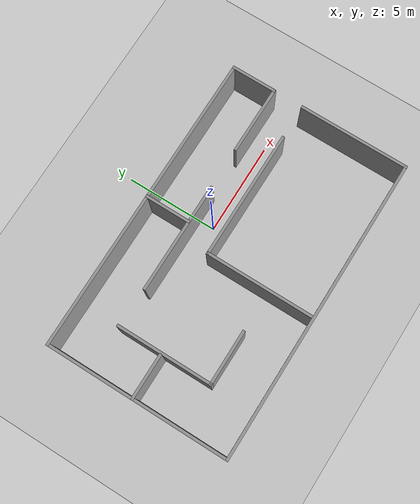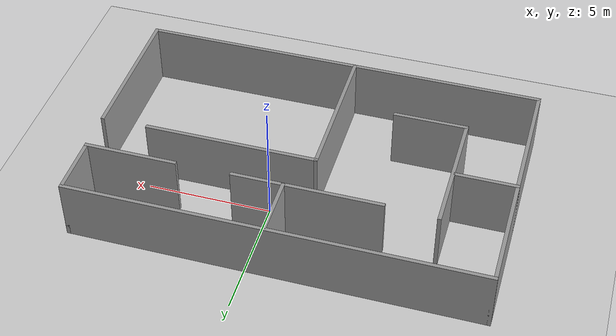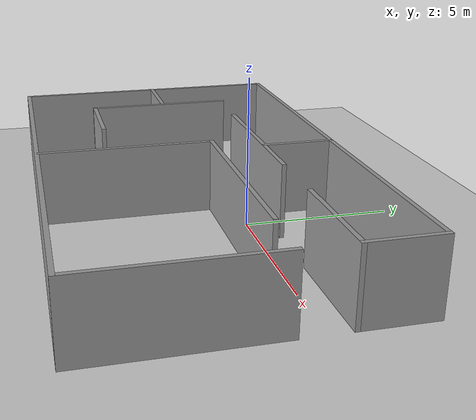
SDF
<sdf version="1.7">
 <world name="default">
  <light name="sun" type="directional">
   <pose>0 0 10 0 -0 0</pose>
   <diffuse>0.8 0.8 0.8 1</diffuse>
   <specular>0.2 0.2 0.2 1</specular>
   <attenuation>
    <range>1000</range>
    <constant>0.9</constant>
    <linear>0.01</linear>
    <quadratic>0.001</quadratic>
   </attenuation>
   <direction>-0.5 0.1 -0.9</direction>
   <spot><inner_angle>0</inner_angle><outer_angle>0</outer_angle><falloff>0</falloff></spot>
  </light>
  <model name="ground_plane">
   <static>1</static>
   <link name="link">
    <collision name="collision">
     <geometry><plane><normal>0 0 1</normal><size>100 100</size></plane></geometry>
     <surface>
      <contact><collide_bitmask>65535</collide_bitmask></contact>
      <friction><ode><mu>100</mu><mu2>50</mu2></ode></friction>
     </surface>
    </collision>
    <visual name="visual">
     <cast_shadows>0</cast_shadows>
     <geometry><plane><normal>0 0 1</normal><size>100 100</size></plane></geometry>
     <material>
      <script><uri>file://media/materials/scripts/gazebo.material</uri><name>Gazebo/Grey</name></script>
     </material>
    </visual>
   </link>
  </model>
  <gravity>0 0 -9.8</gravity>
  <magnetic_field>6e-06 2.3e-05 -4.2e-05</magnetic_field>
  <atmosphere type="adiabatic"/>
  <physics type="ode">
   <max_step_size>0.001</max_step_size>
   <real_time_factor>1</real_time_factor>
   <real_time_update_rate>1000</real_time_update_rate>
  </physics>
  <scene><ambient>0.4 0.4 0.4 1</ambient><background>0.7 0.7 0.7 1</background><shadows>1</shadows></scene>
  <spherical_coordinates>
   <surface_model>EARTH_WGS84</surface_model>
   <latitude_deg>0</latitude_deg>
   <longitude_deg>0</longitude_deg>
   <elevation>0</elevation>
   <heading_deg>0</heading_deg>
  </spherical_coordinates>
  <model name="simple_world">
   <pose>-1.07736 -1.73372 0 0 -0 0</pose>
   <link name="Wall_64">
    <collision name="Wall_64_Collision">
     <geometry><box><size>10 0.15 2.5</size></box></geometry>
     <pose>0 0 1.25 0 -0 0</pose>
    </collision>
    <visual name="Wall_64_Visual">
     <pose>0 0 1.25 0 -0 0</pose>
     <geometry><box><size>10 0.15 2.5</size></box></geometry>
     <material>
      <script><uri>file://media/materials/scripts/gazebo.material</uri><name>Gazebo/Grey</name></script>
      <ambient>1 1 1 1</ambient>
     </material>
     <meta><layer>0</layer></meta>
    </visual>
    <pose>-8.175 0 0 0 -0 -1.5708</pose>
   </link>
   <link name="Wall_65">
    <collision name="Wall_65_Collision">
     <geometry><box><size>16.5 0.15 2.5</size></box></geometry>
     <pose>0 0 1.25 0 -0 0</pose>
    </collision>
    <visual name="Wall_65_Visual">
     <pose>0 0 1.25 0 -0 0</pose>
     <geometry><box><size>16.5 0.15 2.5</size></box></geometry>
     <material>
      <script><uri>file://media/materials/scripts/gazebo.material</uri><name>Gazebo/Grey</name></script>
      <ambient>1 1 1 1</ambient>
     </material>
     <meta><layer>0</layer></meta>
    </visual>
    <pose>-0 -4.925 0 0 -0 0</pose>
   </link>
   <link name="Wall_66">
    <collision name="Wall_66_Collision">
     <geometry><box><size>6 0.15 2.5</size></box></geometry>
     <pose>0 0 1.25 0 -0 0</pose>
    </collision>
    <visual name="Wall_66_Visual">
     <pose>0 0 1.25 0 -0 0</pose>
     <geometry><box><size>6 0.15 2.5</size></box></geometry>
     <material>
      <script><uri>file://media/materials/scripts/gazebo.material</uri><name>Gazebo/Grey</name></script>
      <ambient>1 1 1 1</ambient>
     </material>
     <meta><layer>0</layer></meta>
    </visual>
    <pose>8.175 -2 0 0 -0 1.5708</pose>
   </link>
   <link name="Wall_68">
    <collision name="Wall_68_Collision">
     <geometry><box><size>16.5 0.15 2.5</size></box></geometry>
     <pose>0 0 1.25 0 -0 0</pose>
    </collision>
    <visual name="Wall_68_Visual">
     <pose>0 0 1.25 0 -0 0</pose>
     <geometry><box><size>16.5 0.15 2.5</size></box></geometry>
     <material>
      <script><uri>file://media/materials/scripts/gazebo.material</uri><name>Gazebo/Grey</name></script>
      <ambient>1 1 1 1</ambient>
     </material>
     <meta><layer>0</layer></meta>
    </visual>
    <pose>-0 4.925 0 0 -0 0</pose>
   </link>
   <link name="Wall_69">
    <collision name="Wall_69_Collision">
     <geometry><box><size>2.5 0.15 2.5</size></box></geometry>
     <pose>0 0 1.25 0 -0 0</pose>
    </collision>
    <visual name="Wall_69_Visual">
     <pose>0 0 1.25 0 -0 0</pose>
     <geometry><box><size>2.5 0.15 2.5</size></box></geometry>
     <material>
      <script><uri>file://media/materials/scripts/gazebo.material</uri><name>Gazebo/Grey</name></script>
      <ambient>1 1 1 1</ambient>
     </material>
     <meta><layer>0</layer></meta>
    </visual>
    <pose>8.175 3.75 0 0 -0 -1.5708</pose>
   </link>
   <link name="Wall_71">
    <collision name="Wall_71_Collision">
     <geometry><box><size>3.75 0.15 2.5</size></box></geometry>
     <pose>0 0 1.25 0 -0 0</pose>
    </collision>
    <visual name="Wall_71_Visual">
     <pose>0 0 1.25 0 -0 0</pose>
     <geometry><box><size>3.75 0.15 2.5</size></box></geometry>
     <material>
      <script><uri>file://media/materials/scripts/gazebo.material</uri><name>Gazebo/Grey</name></script>
      <ambient>1 1 1 1</ambient>
     </material>
     <meta><layer>0</layer></meta>
    </visual>
    <pose>6.375 2.575 0 0 -0 3.14159</pose>
   </link>
   <link name="Wall_73">
    <collision name="Wall_73_Collision">
     <geometry><box><size>6 0.15 2.5</size></box></geometry>
     <pose>0 0 1.25 0 -0 0</pose>
    </collision>
    <visual name="Wall_73_Visual">
     <pose>0 0 1.25 0 -0 0</pose>
     <geometry><box><size>6 0.15 2.5</size></box></geometry>
     <material>
      <script><uri>file://media/materials/scripts/gazebo.material</uri><name>Gazebo/Grey</name></script>
      <ambient>1 1 1 1</ambient>
     </material>
     <meta><layer>0</layer></meta>
    </visual>
    <pose>-0.653328 2.54475 0 0 -0 3.14159</pose>
   </link>
   <link name="Wall_75">
    <collision name="Wall_75_Collision">
     <geometry><box><size>5.25 0.15 2.5</size></box></geometry>
     <pose>0 0 1.25 0 -0 0</pose>
    </collision>
    <visual name="Wall_75_Visual">
     <pose>0 0 1.25 0 -0 0</pose>
     <geometry><box><size>5.25 0.15 2.5</size></box></geometry>
     <material>
      <script><uri>file://media/materials/scripts/gazebo.material</uri><name>Gazebo/Grey</name></script>
      <ambient>1 1 1 1</ambient>
     </material>
     <meta><layer>0</layer></meta>
    </visual>
    <pose>-5.7154 0.074088 0 0 -0 -1.5708</pose>
   </link>
   <link name="Wall_77">
    <collision name="Wall_77_Collision">
     <geometry><box><size>3 0.15 2.5</size></box></geometry>
     <pose>0 0 1.25 0 -0 0</pose>
    </collision>
    <visual name="Wall_77_Visual">
     <pose>0 0 1.25 0 -0 0</pose>
     <geometry><box><size>3 0.15 2.5</size></box></geometry>
     <material>
      <script><uri>file://media/materials/scripts/gazebo.material</uri><name>Gazebo/Grey</name></script>
      <ambient>1 1 1 1</ambient>
     </material>
     <meta><layer>0</layer></meta>
    </visual>
    <pose>-4.2904 -2.47591 0 0 -0 0</pose>
   </link>
   <link name="Wall_79">
    <collision name="Wall_79_Collision">
     <geometry><box><size>6 0.15 2.5</size></box></geometry>
     <pose>0 0 1.25 0 -0 0</pose>
    </collision>
    <visual name="Wall_79_Visual">
     <pose>0 0 1.25 0 -0 0</pose>
     <geometry><box><size>6 0.15 2.5</size></box></geometry>
     <material>
      <script><uri>file://media/materials/scripts/gazebo.material</uri><name>Gazebo/Grey</name></script>
      <ambient>1 1 1 1</ambient>
     </material>
     <meta><layer>0</layer></meta>
    </visual>
    <pose>-0.558186 -1.98838 0 0 -0 1.5708</pose>
   </link>
   <link name="Wall_80">
    <collision name="Wall_80_Collision">
     <geometry><box><size>7 0.15 2.5</size></box></geometry>
     <pose>0 0 1.25 0 -0 0</pose>
    </collision>
    <visual name="Wall_80_Visual">
     <pose>0 0 1.25 0 -0 0</pose>
     <geometry><box><size>7 0.15 2.5</size></box></geometry>
     <material>
      <script><uri>file://media/materials/scripts/gazebo.material</uri><name>Gazebo/Grey</name></script>
      <ambient>1 1 1 1</ambient>
     </material>
     <meta><layer>0</layer></meta>
    </visual>
    <pose>2.86681 0.936616 0 0 -0 0</pose>
   </link>
   <link name="Wall_82">
    <collision name="Wall_82_Collision">
     <geometry><box><size>2.5 0.15 2.5</size></box></geometry>
     <pose>0 0 1.25 0 -0 0</pose>
    </collision>
    <visual name="Wall_82_Visual">
     <pose>0 0 1.25 0 -0 0</pose>
     <geometry><box><size>2.5 0.15 2.5</size></box></geometry>
     <material>
      <script><uri>file://media/materials/scripts/gazebo.material</uri><name>Gazebo/Grey</name></script>
      <ambient>1 1 1 1</ambient>
     </material>
     <meta><layer>0</layer></meta>
    </visual>
    <pose>0.261679 3.74619 0 0 -0 1.5708</pose>
   </link>
   <link name="Wall_86">
    <collision name="Wall_86_Collision">
     <geometry><box><size>2.5 0.15 2.5</size></box></geometry>
     <pose>0 0 1.25 0 -0 0</pose>
    </collision>
    <visual name="Wall_86_Visual">
     <pose>0 0 1.25 0 -0 0</pose>
     <geometry><box><size>2.5 0.15 2.5</size></box></geometry>
     <material>
      <script><uri>file://media/materials/scripts/gazebo.material</uri><name>Gazebo/Grey</name></script>
      <ambient>1 1 1 1</ambient>
     </material>
     <meta><layer>0</layer></meta>
    </visual>
    <pose>-7 0.217386 0 0 -0 0</pose>
   </link>
   <static>1</static>
  </model>
 </world>
</sdf>
